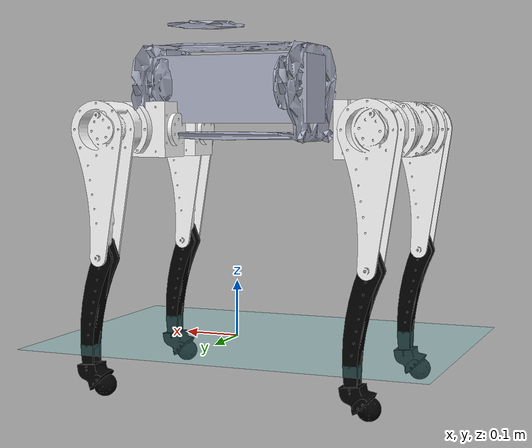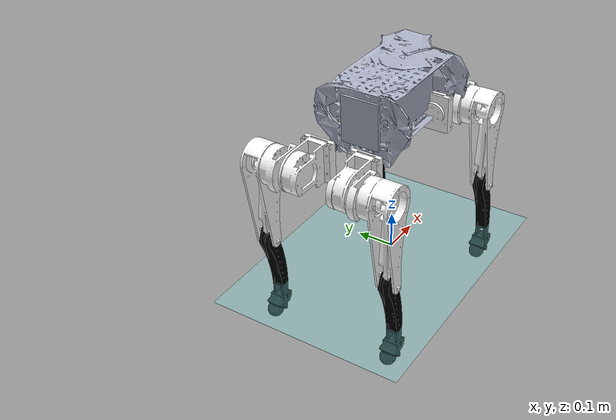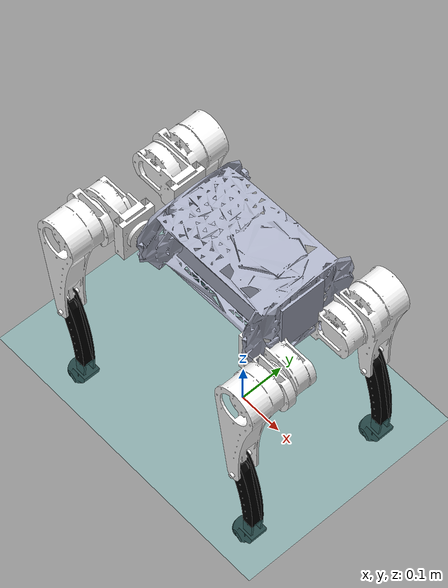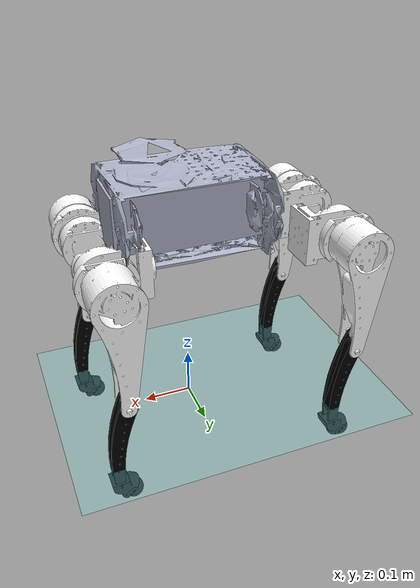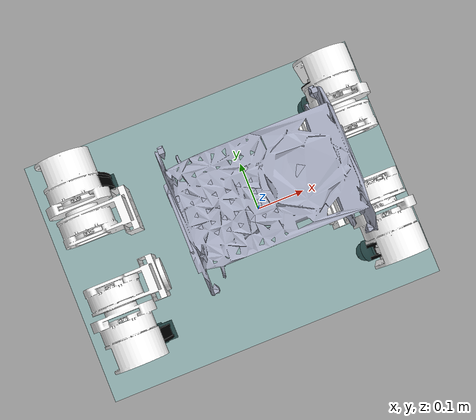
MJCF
<mujoco model="mybot_description">
    <compiler angle="radian" meshdir="../meshes" />
    <size njmax="500" nconmax="100" />
    <option gravity='0 0 -9.806' iterations='50' solver='Newton' timestep='0.002'/>

    <default>
        <geom contype="1" conaffinity="1" friction="0.6 0.3 0.3" rgba="0.5 0.6 0.7 1" margin="0.001" group="0"/>
        <light castshadow="false" diffuse="1 1 1"/>
        <motor ctrlrange="-33.5 33.5" ctrllimited="true"/>
        <camera fovy="60"/>
        <joint damping="0.6" armature="0.01" frictionloss="0.2" />
    </default>

    <asset>
        <mesh name="body" file="body.obj" />
        <mesh name="FL_hip" file="FL_hip.obj" />
        <mesh name="FL_thigh" file="FL_thigh.obj" />
        <mesh name="FL_calf" file="FL_calf.obj" />
        <mesh name="FL_foot" file="FL_foot.obj" />
        <mesh name="FR_hip" file="FR_hip.obj" />
        <mesh name="FR_thigh" file="FR_thigh.obj" />
        <mesh name="FR_calf" file="FR_calf.obj" />
        <mesh name="FR_foot" file="FR_foot.obj" />
        <mesh name="RL_hip" file="RL_hip.obj" />
        <mesh name="RL_thigh" file="RL_thigh.obj" />
        <mesh name="RL_calf" file="RL_calf.obj" />
        <mesh name="RL_foot" file="RL_foot.obj" />
        <mesh name="RR_hip" file="RR_hip.obj" />
        <mesh name="RR_thigh" file="RR_thigh.obj" />
        <mesh name="RR_calf" file="RR_calf.obj" />
        <mesh name="RR_foot" file="RR_foot.obj" />
    </asset>

    <asset>
        <texture type="skybox" builtin="gradient" rgb1="1.0 1.0 1.0" rgb2="1.0 1.0 1.0" width="512" height="512"/>
        <texture name="plane" type="2d" builtin="flat" rgb1="1 1 1" rgb2="1 1 1" width="512" height="512" mark="cross" markrgb="0 0 0"/>
        <material name="plane" reflectance="0.0" texture="plane" texrepeat="3 3" texuniform="true"/>
    </asset>

    <visual>
        <rgba com="0.502 1.0 0 0.5" contactforce="0.98 0.4 0.4 0.7" contactpoint="1.0 1.0 0.6 0.4"/>
        <scale com="0.2" forcewidth="0.035" contactwidth="0.10" contactheight="0.04"/>
    </visual>

    <worldbody>
        <light directional="true" diffuse=".8 .8 .8" pos="0 0 10" dir="0 0 -10"/>
        <camera name="track" mode="trackcom" pos="0 -1.3 1.6" xyaxes="1 0 0 0 0.707 0.707"/>
        <geom name='floor' type='plane' conaffinity='1' condim='3' contype='1' rgba="0.5 0.9 0.9 0.1" material='plane' pos='0 0 0' size='0 0 1'/>

        <body name="base" pos="0 0 0.445">
            <inertial pos="-0.075044 0.0013153 0.023062" quat="0.5 0.5 0.5 0.5" mass="5.3036" diaginertia="0.017259 0.017164 0.012634" />
            <joint type="free" />
            <geom type="mesh" contype="0" conaffinity="0" group="1" rgba="0.67 0.69 0.77 1" mesh="body" />
            <geom size="0.15 0.05 0.06" type="box" rgba="0.67 0.69 0.77 1" />
            <site name="imu" pos="0 0 0"/>
            <body name="FR_hip" pos="0.0946 -0.062 -0.071">
                <inertial pos="0.050324 -0.0023835 -1.926E-05" quat="0.5 0.5 -0.5 0.5" mass="0.64533" diaginertia="0.00081299 0.00051628 0.00043556" />
                <joint name="FR_hip_joint" pos="0 0 0" axis="1 0 0" limited="true" range="-0.48 0.48" />
                <geom type="mesh" contype="0" conaffinity="0" group="1" rgba="1 1 1 1" mesh="FR_hip" />
                <geom size="0.046 0.02" pos="0 -0.03 0" quat="0.707107 0.707107 0 0" type="cylinder" rgba="1 1 1 0" />

                <body name="FR_thigh" pos="0.085 -0.03295 0">
                    <inertial pos="0.0003687 -0.05094 -0.044849" quat="0.999 0 -0.038 0" mass="1.107" diaginertia="0.0030336 0.0026249 0.00046586" />
                    <joint name="FR_thigh_joint" pos="0 0 0" axis="0 1 0" limited="true" range="-1.44 1.44" />
                    <geom type="mesh" contype="0" conaffinity="0" group="1" rgba="1 1 1 1" mesh="FR_thigh" />
                    <geom size="0.11 0.012 0.017" pos="0 0 -0.11" quat="0.707107 0 0.707107 0" type="box" rgba="1 1 1 0" />

                    <body name="FR_calf" pos="0 -0.0705 -0.22">
                        <inertial pos="0.01731 3.8634E-05 -0.100139" quat="0.762 0.01 0.018 0.647" mass="0.29248" diaginertia="0.0009493 0.0009031 0.00006325" />
                        <joint name="FR_calf_joint" pos="0 0 0" axis="0 1 0" limited="true" range="-2.7 -0.6" />
                        <geom type="mesh" contype="0" conaffinity="0" group="1" rgba="0 0 0 1" mesh="FR_calf" />
                        <geom size="0.1 0.008 0.008" pos="0 0 -0.1" quat="0.707107 0 0.707107 0" type="box" rgba="0 0 0 0" />

                        <body name="FR_foot" pos="0.0015191 0.00025002 -0.22467">
                            <inertial pos="0 0 0" mass="0.0335" diaginertia="5.36e-6 5.36e-6 5.36e-6"/>
                            <geom type="mesh" contype="0" conaffinity="0" group="1" rgba="0 0 0 1" mesh="FR_foot" />
                            <geom size="0.02" pos="0 0 0" rgba="0 0 0 1" />
                        </body>
                    </body>
                </body>
            </body>
            <body name="FL_hip" pos="0.0946 0.062 -0.071">
                <inertial pos="0.049109 0.0014996 -1.9828E-05" quat="0.5 0.5 0.5 0.5" mass="0.62455" diaginertia="0.00080416 0.00051175 0.00043104" />
                <joint name="FL_hip_joint" pos="0 0 0" axis="1 0 0" limited="true" range="-0.48 0.48" />
                <geom type="mesh" contype="0" conaffinity="0" group="1" rgba="1 1 1 1" mesh="FL_hip" />
                <geom size="0.046 0.02" pos="0 0.03 0" quat="0.707107 0.707107 0 0" type="cylinder" rgba="1 1 1 0" />

                <body name="FL_thigh" pos="0.085 0.03295 0">
                    <inertial pos="0.00040284 0.05094 -0.044849" quat="0.999 0 -0.038 0" mass="1.107" diaginertia="0.0030336 0.0026249 0.00046586" />
                    <joint name="FL_thigh_joint" pos="0 0 0" axis="0 1 0" limited="true" range="-1.44 1.44" />
                    <geom type="mesh" contype="0" conaffinity="0" group="1" rgba="1 1 1 1" mesh="FL_thigh" />
                    <geom size="0.11 0.012 0.017" pos="0 0 -0.11" quat="0.707107 0 0.707107 0" type="box" rgba="1 1 1 0" />

                    <body name="FL_calf" pos="0 0.0705 -0.22">
                        <inertial pos="0.017331 -3.8626E-05 -0.100135" quat="0.762 0.01 0.018 0.647" mass="0.29248" diaginertia="0.0009493 0.0009033 0.00006306" />
                        <joint name="FL_calf_joint" pos="0 0 0" axis="0 1 0" limited="true" range="-2.7 -0.6" />
                        <geom type="mesh" contype="0" conaffinity="0" group="1" rgba="0 0 0 1" mesh="FL_calf" />
                        <geom size="0.1 0.008 0.008" pos="0 0 -0.1" quat="0.707107 0 0.707107 0" type="box" rgba="0 0 0 0" />

                        <body name="FL_foot" pos="0.0015191 -0.00024999 -0.22467">
                            <inertial pos="0 0 0" mass="0.0335" diaginertia="5.36e-6 5.36e-6 5.36e-6"/>
                            <geom type="mesh" contype="0" conaffinity="0" group="1" rgba="0 0 0 1" mesh="FL_foot" />
                            <geom size="0.02" pos="0 0 0" rgba="0 0 0 1" />
                        </body>
                    </body>
                </body>
            </body>
            <body name="RR_hip" pos="-0.2146 -0.062 -0.071">
                <inertial pos="-0.050937 -0.001551 2.072E-05" quat="0.5 0.5 -0.5 0.5" mass="0.60377" diaginertia="0.00079963 0.00050292 0.00042651" />
                <joint name="RR_hip_joint" pos="0 0 0" axis="1 0 0" limited="true" range="-0.48 0.48" />
                <geom type="mesh" contype="0" conaffinity="0" group="1" rgba="1 1 1 1" mesh="RR_hip" />
                <geom size="0.046 0.02" pos="0 -0.03 0" quat="0.707107 0.707107 0 0" type="cylinder" rgba="1 1 1 0" />

                <body name="RR_thigh" pos="-0.085 -0.03295 0">
                    <inertial pos="1.288e-05 -0.05094 -0.04485" quat="0.999 0 -0.038 0" mass="1.107" diaginertia="0.0030336 0.0026254 0.00046537" />
                    <joint name="RR_thigh_joint" pos="0 0 0" axis="0 1 0" limited="true" range="-1.44 1.44" />
                    <geom type="mesh" contype="0" conaffinity="0" group="1" rgba="1 1 1 1" mesh="RR_thigh" />
                    <geom size="0.11 0.012 0.017" pos="0 0 -0.11" quat="0.707107 0 0.707107 0" type="box" rgba="1 1 1 0" />

                    <body name="RR_calf" pos="0 -0.0705 -0.22">
                        <inertial pos="0.01731 3.8634E-05 -0.100139" quat="0.762 0.01 0.018 0.647" mass="0.29248" diaginertia="0.0009493 0.0009031 0.00006325" />
                        <joint name="RR_calf_joint" pos="0 0 0" axis="0 1 0" limited="true" range="-2.7 -0.6" />
                        <geom type="mesh" contype="0" conaffinity="0" group="1" rgba="0 0 0 1" mesh="RR_calf" />
                        <geom size="0.1 0.008 0.008" pos="0 0 -0.1" quat="0.707107 0 0.707107 0" type="box" rgba="0 0 0 0" />

                        <body name="RR_foot" pos="0.0015191 0.00025002 -0.22467">
                            <inertial pos="0 0 0" mass="0.0335" diaginertia="5.36e-6 5.36e-6 5.36e-6"/>
                            <geom type="mesh" contype="0" conaffinity="0" group="1" rgba="0 0 0 1" mesh="RR_foot" />
                            <geom size="0.02" pos="0 0 0" rgba="0 0 0 1" />
                        </body>
                    </body>
                </body>
            </body>
            <body name="RL_hip" pos="-0.2146 0.062 -0.071">
                <inertial pos="-0.050937 0.001551 2.072E-05" quat="0.5 0.5 0.5 0.5" mass="0.60377" diaginertia="0.00079963 0.00050292 0.00042651" />
                <joint name="RL_hip_joint" pos="0 0 0" axis="1 0 0" limited="true" range="-0.48 0.48" />
                <geom type="mesh" contype="0" conaffinity="0" group="1" rgba="1 1 1 1" mesh="RL_hip" />
                <geom size="0.046 0.02" pos="0 0.03 0" quat="0.707107 0.707107 0 0" type="cylinder" rgba="1 1 1 0" />

                <body name="RL_thigh" pos="-0.085 0.03295 0">
                    <inertial pos="4.708e-05 0.05094 -0.04485" quat="0.999 0 -0.038 0" mass="1.107" diaginertia="0.0030336 0.0026254 0.00046537" />
                    <joint name="RL_thigh_joint" pos="0 0 0" axis="0 1 0" limited="true" range="-1.44 1.44" />
                    <geom type="mesh" contype="0" conaffinity="0" group="1" rgba="1 1 1 1" mesh="RL_thigh" />
                    <geom size="0.11 0.012 0.017" pos="0 0 -0.11" quat="0.707107 0 0.707107 0" type="box" rgba="1 1 1 0" />

                    <body name="RL_calf" pos="0 0.0705 -0.22">
                        <inertial pos="0.01733 -3.8626E-05 -0.100135" quat="0.762 0.01 0.018 0.647" mass="0.29248" diaginertia="0.0009493 0.0009033 0.00006306" />
                        <joint name="RL_calf_joint" pos="0 0 0" axis="0 1 0" limited="true" range="-2.7 -0.6" />
                        <geom type="mesh" contype="0" conaffinity="0" group="1" rgba="0 0 0 1" mesh="RL_calf" />
                        <geom size="0.1 0.008 0.008" pos="0 0 -0.1" quat="0.707107 0 0.707107 0" type="box" rgba="0 0 0 0" />

                        <body name="RL_foot" pos="0.0015191 -0.00024998 -0.22467">
                            <inertial pos="0 0 0" mass="0.0335" diaginertia="5.36e-6 5.36e-6 5.36e-6"/>
                            <geom type="mesh" contype="0" conaffinity="0" group="1" rgba="0 0 0 1" mesh="RL_foot" />
                            <geom size="0.02" pos="0 0 0" rgba="0 0 0 1" />
                        </body>
                    </body>
                </body>
            </body>
        </body>
    </worldbody>
    <actuator>
        <motor name="FR_hip"       gear="1" joint="FR_hip_joint"/>
        <motor name="FR_thigh"     gear="1" joint="FR_thigh_joint"/>
        <motor name="FR_calf"      gear="1" joint="FR_calf_joint"/>
        <motor name="FL_hip"       gear="1" joint="FL_hip_joint"/>
        <motor name="FL_thigh"     gear="1" joint="FL_thigh_joint"/>
        <motor name="FL_calf"      gear="1" joint="FL_calf_joint"/>
        <motor name="RR_hip"       gear="1" joint="RR_hip_joint"/>
        <motor name="RR_thigh"     gear="1" joint="RR_thigh_joint"/>
        <motor name="RR_calf"      gear="1" joint="RR_calf_joint"/>
        <motor name="RL_hip"       gear="1" joint="RL_hip_joint"/>
        <motor name="RL_thigh"     gear="1" joint="RL_thigh_joint"/>
        <motor name="RL_calf"      gear="1" joint="RL_calf_joint"/>
    </actuator>

    <sensor>
        <jointpos name="FR_hip_pos"     joint="FR_hip_joint"/>
        <jointpos name="FR_thigh_pos"   joint="FR_thigh_joint"/>
        <jointpos name="FR_calf_pos"    joint="FR_calf_joint"/>
        <jointpos name="FL_hip_pos"     joint="FL_hip_joint"/>
        <jointpos name="FL_thigh_pos"   joint="FL_thigh_joint"/>
        <jointpos name="FL_calf_pos"    joint="FL_calf_joint"/>
        <jointpos name="RR_hip_pos"     joint="RR_hip_joint"/>
        <jointpos name="RR_thigh_pos"   joint="RR_thigh_joint"/>
        <jointpos name="RR_calf_pos"    joint="RR_calf_joint"/>
        <jointpos name="RL_hip_pos"     joint="RL_hip_joint"/>
        <jointpos name="RL_thigh_pos"   joint="RL_thigh_joint"/>
        <jointpos name="RL_calf_pos"    joint="RL_calf_joint"/>

        <jointvel name="FR_hip_vel"     joint="FR_hip_joint"/>
        <jointvel name="FR_thigh_vel"   joint="FR_thigh_joint"/>
        <jointvel name="FR_calf_vel"    joint="FR_calf_joint"/>
        <jointvel name="FL_hip_vel"     joint="FL_hip_joint"/>
        <jointvel name="FL_thigh_vel"   joint="FL_thigh_joint"/>
        <jointvel name="FL_calf_vel"    joint="FL_calf_joint"/>
        <jointvel name="RR_hip_vel"     joint="RR_hip_joint"/>
        <jointvel name="RR_thigh_vel"   joint="RR_thigh_joint"/>
        <jointvel name="RR_calf_vel"    joint="RR_calf_joint"/>
        <jointvel name="RL_hip_vel"     joint="RL_hip_joint"/>
        <jointvel name="RL_thigh_vel"   joint="RL_thigh_joint"/>
        <jointvel name="RL_calf_vel"    joint="RL_calf_joint"/>

        <accelerometer name="Body_Acc" site="imu"/>
        <gyro name="Body_Gyro" site="imu"/>
        <framepos name="Body_Pos" objtype="site" objname="imu"/>
        <framequat name="Body_Quat" objtype="site" objname="imu"/>
    </sensor>
</mujoco>
